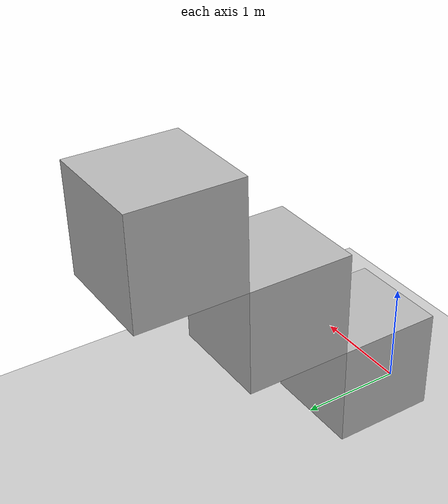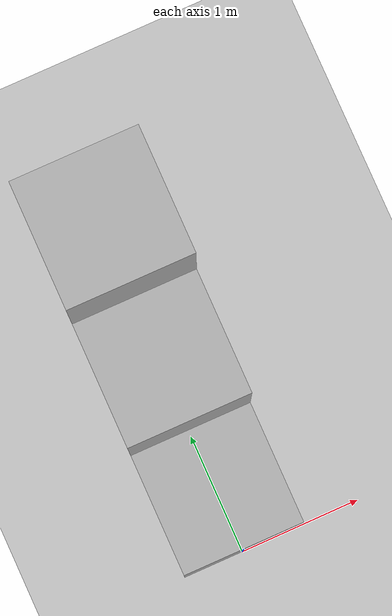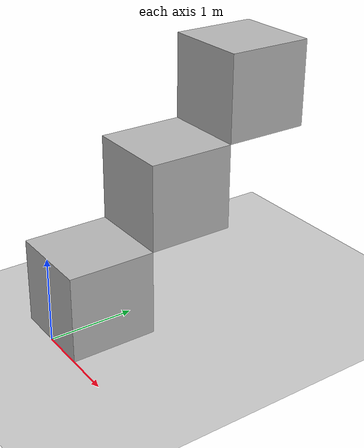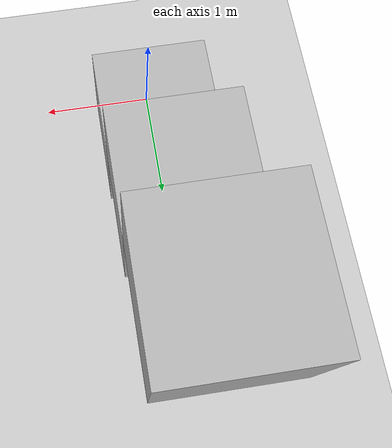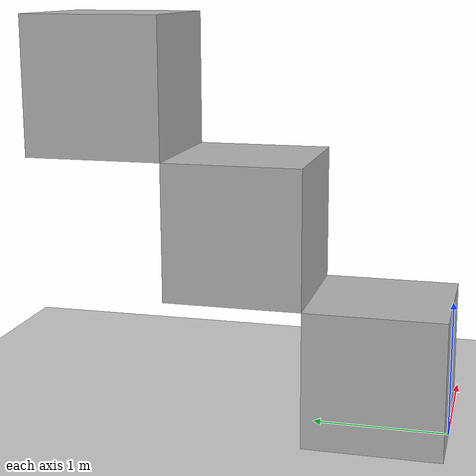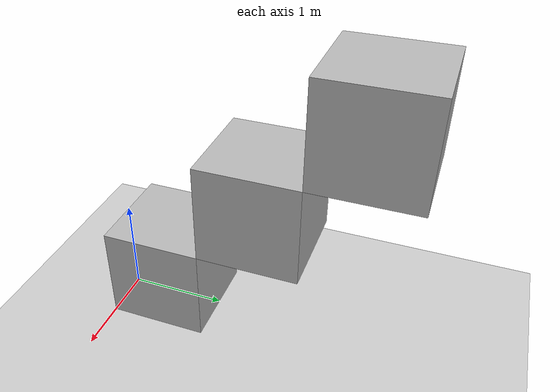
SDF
<?xml version="1.0" ?>
<sdf version="1.4">
  <world name="default">
    <physics type="ode">
      <gravity>0.000000 0.000000 -9.810000</gravity>
      <ode>
        <solver>
          <type>quick</type>
          <iters>250</iters>
          <precon_iters>0</precon_iters>
          <sor>1.400000</sor>
        </solver>
        <constraints>
          <cfm>0.000000</cfm>
          <erp>0.200000</erp>
          <contact_max_correcting_vel>0.000000</contact_max_correcting_vel>
          <contact_surface_layer>0.00000</contact_surface_layer>
        </constraints>
      </ode>
      <bullet>
        <solver>
          <type>sequential_impulse</type>
          <iters>250</iters>
          <sor>1.400000</sor>
        </solver>
        <constraints>
          <cfm>0.000000</cfm>
          <erp>0.200000</erp>
          <split_impulse>true</split_impulse>
          <split_impulse_penetration_threshold>-0.01</split_impulse_penetration_threshold>
          <contact_surface_layer>0.01000</contact_surface_layer>
        </constraints>
      </bullet>
      <simbody>
        <accuracy>0.001</accuracy>
        <max_transient_velocity>0.01</max_transient_velocity>
        <contact>
          <stiffness>1e8</stiffness>
          <dissipation>10</dissipation>
          <static_friction>0.15</static_friction>
          <dynamic_friction>0.1</dynamic_friction>
          <viscous_friction>0.0</viscous_friction>
        </contact>
      </simbody>
      <real_time_update_rate>0.000000</real_time_update_rate>
      <max_step_size>0.001000</max_step_size>
    </physics>

    <include>
      <uri>model://ground_plane</uri>
    </include>
    <include>
      <uri>model://sun</uri>
    </include>

    <!-- test contributed by jesper -->
    <model name="boxes">
      <pose>0 0 0 0 0 1.57</pose>
      <link name="link1">
        <collision name="collision">
          <pose>0.5 0 0.5 0 0 0</pose>
          <geometry>
            <box>
              <size>1 1 1</size>
            </box>
          </geometry>
          <surface>
            <contact>
              <ode>
                <min_depth>0.01</min_depth>
              </ode>
            </contact>
            <friction>
              <bullet>
                <friction>1</friction>
                <friction2>1</friction2>
              </bullet>
              <ode>
                <mu>1</mu>
                <mu2>1</mu2>
              </ode>
            </friction>
          </surface>
        </collision>
        <visual name="visual">
          <pose>0.5 0 0.5 0 0 0</pose>
          <geometry>
            <box>
              <size>1 1 1</size>
            </box>
          </geometry>
        </visual>
        <inertial>
          <mass>100.0</mass>
          <pose>0.5 0 0.5 0 0 0</pose>
          <inertia>
            <ixx>1.0</ixx>
            <iyy>1.0</iyy>
            <izz>1.0</izz>
            <ixy>0.0</ixy>
            <ixz>0.0</ixz>
            <iyz>0.0</iyz>
          </inertia>
        </inertial>
      </link>
      <link name="link2">
        <pose>1.0 0 1.0 0 0 0</pose>
        <collision name="collision">
          <pose>0.5 0 0.5 0 0 0</pose>
          <geometry>
            <box>
              <size>1 1 1</size>
            </box>
          </geometry>
        </collision>
        <visual name="visual">
          <pose>0.5 0 0.5 0 0 0</pose>
          <geometry>
            <box>
              <size>1 1 1</size>
            </box>
          </geometry>
        </visual>
        <inertial>
          <mass>5.0</mass>
          <pose>0.5 0 0.5 0 0 0</pose>
          <inertia>
            <ixx>0.05</ixx>
            <iyy>0.05</iyy>
            <izz>0.05</izz>
            <ixy>0.0</ixy>
            <ixz>0.0</ixz>
            <iyz>0.0</iyz>
          </inertia>
        </inertial>
      </link>
      <link name="link3">
        <pose>2.0 0 2.0 0 0 0</pose>
        <collision name="collision">
          <pose>0.5 0 0.5 0 0 0</pose>
          <geometry>
            <box>
              <size>1 1 1</size>
            </box>
          </geometry>
        </collision>
        <visual name="visual">
          <pose>0.5 0 0.5 0 0 0</pose>
          <geometry>
            <box>
              <size>1 1 1</size>
            </box>
          </geometry>
        </visual>
        <inertial>
          <mass>1.0</mass>
          <pose>0.5 0.5 0.5 0 0 0</pose>
          <inertia>
            <ixx>0.001</ixx>
            <iyy>0.001</iyy>
            <izz>0.001</izz>
            <ixy>0.0</ixy>
            <ixz>0.0</ixz>
            <iyz>0.0</iyz>
          </inertia>
        </inertial>
      </link>
      <joint name="joint1" type="revolute">
        <physics>
          <provide_feedback>true</provide_feedback>
          <ode>
            <cfm_damping>true</cfm_damping>
          </ode>
        </physics>
        <axis>
          <xyz>0 1 0</xyz>
          <dynamics>
            <damping>100.000000</damping>
          </dynamics>
        </axis>
        <parent>link1</parent>
        <child>link2</child>

        <sensor name="force_torque" type="force_torque">
          <always_on>true</always_on>
          <visualize>true</visualize>
          <update_rate>30</update_rate>
        </sensor>

      </joint>
      <joint name="joint2" type="revolute">
        <physics>
          <provide_feedback>true</provide_feedback>
          <ode>
            <cfm_damping>true</cfm_damping>
          </ode>
        </physics>
        <axis>
          <xyz>0 1 0</xyz>
          <dynamics>
            <damping>30.000000</damping>
          </dynamics>
        </axis>
        <parent>link2</parent>
        <child>link3</child>
        <sensor name="force_torque" type="force_torque">
          <always_on>true</always_on>
          <visualize>true</visualize>
          <update_rate>30</update_rate>
        </sensor>
      </joint>
    </model>
  </world>
</sdf>
